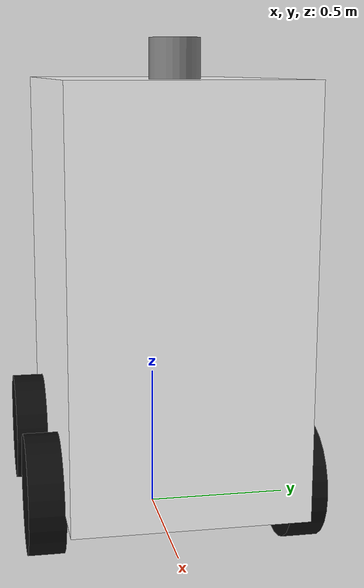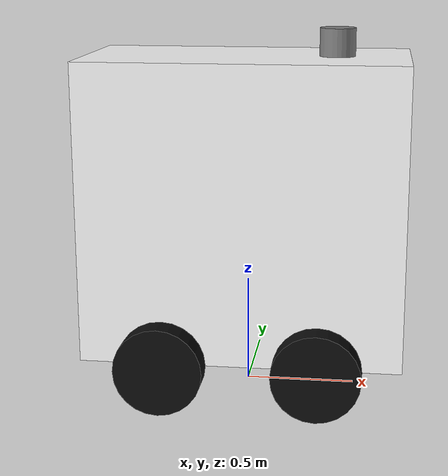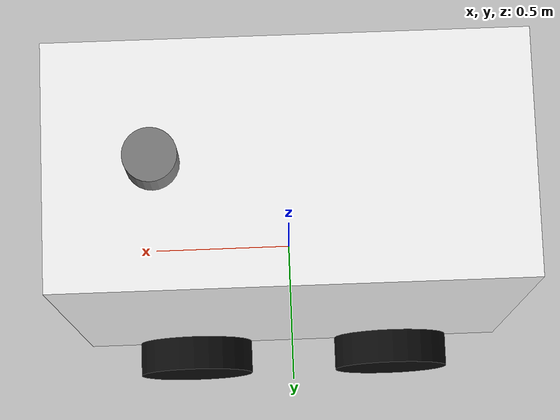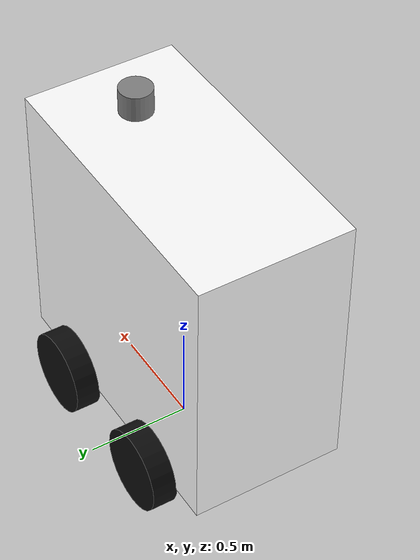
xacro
<?xml version="1.0"?>
<robot name="wtb_robot" xmlns:xacro="http://www.ros.org/wiki/xacro">
  <!-- Keep the vehicle description usable both from the full vehicle launch
       and from arm-only bringup, which explicitly disables the wheel joints. -->
  <xacro:arg name="enable_ackermann" default="true"/>

  <xacro:property name="base_length" value="1.45"/>
  <xacro:property name="base_width" value="0.75"/>
  <xacro:property name="base_height" value="1.35"/>
  <xacro:property name="base_z" value="0.20"/>
  <xacro:property name="wheel_radius" value="0.20"/>
  <xacro:property name="wheel_length" value="0.12"/>
  <!-- Measured vehicle geometry: front/rear axle distance is the wheelbase;
       left/right wheel-center distance is the track width. -->
  <xacro:property name="wheel_base" value="0.70"/>
  <xacro:property name="track_width" value="0.86"/>
  <xacro:property name="wheel_x" value="${wheel_base / 2.0}"/>
  <xacro:property name="wheel_y" value="${track_width / 2.0}"/>

  <xacro:macro name="box_inertial" params="mass x y z">
    <inertial>
      <mass value="${mass}"/>
      <inertia ixx="${mass*(y*y+z*z)/12}" ixy="0" ixz="0"
               iyy="${mass*(x*x+z*z)/12}" iyz="0"
               izz="${mass*(x*x+y*y)/12}"/>
    </inertial>
  </xacro:macro>

  <xacro:macro name="wheel_link" params="name">
    <link name="${name}_link">
      <visual>
        <origin rpy="1.5708 0 0"/>
        <geometry><cylinder radius="${wheel_radius}" length="${wheel_length}"/></geometry>
        <material name="wtb_black"><color rgba="0.05 0.05 0.05 1"/></material>
      </visual>
      <collision>
        <origin rpy="1.5708 0 0"/>
        <geometry><cylinder radius="${wheel_radius}" length="${wheel_length}"/></geometry>
      </collision>
      <inertial>
        <mass value="3.0"/>
        <inertia ixx="0.0636" ixy="0" ixz="0" iyy="0.0636" iyz="0" izz="0.0216"/>
      </inertial>
    </link>
  </xacro:macro>

  <xacro:macro name="rear_wheel" params="name x y">
    <xacro:wheel_link name="${name}"/>
    <joint name="${name}_joint" type="continuous">
      <parent link="base_link"/><child link="${name}_link"/>
      <origin xyz="${x} ${y} ${-base_height/2}"/>
      <axis xyz="0 1 0"/>
      <limit effort="500" velocity="20"/>
      <dynamics damping="0.2" friction="0.1"/>
    </joint>
  </xacro:macro>

  <xacro:macro name="front_wheel" params="name x y">
    <link name="${name}_steer_link">
      <inertial><mass value="0.1"/><inertia ixx="0.001" ixy="0" ixz="0" iyy="0.001" iyz="0" izz="0.001"/></inertial>
    </link>
    <joint name="${name}_steer_joint" type="revolute">
      <parent link="base_link"/><child link="${name}_steer_link"/>
      <origin xyz="${x} ${y} ${-base_height/2}"/>
      <axis xyz="0 0 1"/>
      <limit effort="500" velocity="2" lower="-0.6109" upper="0.6109"/>
      <dynamics damping="1"/>
    </joint>
    <xacro:wheel_link name="${name}"/>
    <joint name="${name}_joint" type="continuous">
      <parent link="${name}_steer_link"/><child link="${name}_link"/>
      <axis xyz="0 1 0"/>
      <limit effort="500" velocity="20"/>
      <dynamics damping="0.2" friction="0.1"/>
    </joint>
  </xacro:macro>

  <xacro:macro name="wtb_car">
    <link name="base_footprint"/>
    <link name="base_link">
      <visual>
        <geometry><box size="${base_length} ${base_width} ${base_height}"/></geometry>
        <material name="wtb_white"><color rgba="1 1 1 1"/></material>
      </visual>
      <collision><geometry><box size="${base_length} ${base_width} ${base_height}"/></geometry></collision>
      <xacro:box_inertial mass="90" x="${base_length}" y="${base_width}" z="${base_height}"/>
    </link>
    <joint name="base_link_joint" type="fixed">
      <parent link="base_footprint"/><child link="base_link"/>
      <origin xyz="0 0 ${base_z + base_height/2}"/>
    </joint>

    <xacro:if value="$(arg enable_ackermann)">
      <xacro:front_wheel name="left_front" x="${wheel_x}" y="${wheel_y}"/>
      <xacro:front_wheel name="right_front" x="${wheel_x}" y="${-wheel_y}"/>
      <xacro:rear_wheel name="left_wheel" x="${-wheel_x}" y="${wheel_y}"/>
      <xacro:rear_wheel name="right_wheel" x="${-wheel_x}" y="${-wheel_y}"/>
    </xacro:if>

    <link name="laser">
      <visual><geometry><cylinder radius="0.08" length="0.15"/></geometry><material name="wtb_gray"><color rgba="0.5 0.5 0.5 1"/></material></visual>
      <collision><geometry><cylinder radius="0.08" length="0.15"/></geometry></collision>
      <inertial><mass value="0.5"/><inertia ixx="0.001" ixy="0" ixz="0" iyy="0.001" iyz="0" izz="0.001"/></inertial>
    </link>
    <joint name="lidar_joint" type="fixed">
      <parent link="base_link"/><child link="laser"/><origin xyz="0.4 0 0.725"/>
    </joint>

    <link name="gyro_link">
      <visual><geometry><box size="0.1 0.1 0.01"/></geometry><material name="wtb_gray"/></visual>
      <collision><geometry><box size="0.1 0.1 0.01"/></geometry></collision>
      <xacro:box_inertial mass="0.1" x="0.1" y="0.1" z="0.01"/>
    </link>
    <joint name="IMU_joint" type="fixed">
      <parent link="base_link"/><child link="gyro_link"/><origin xyz="0 0 -0.4"/>
    </joint>
  </xacro:macro>

  <xacro:wtb_car/>
</robot>
